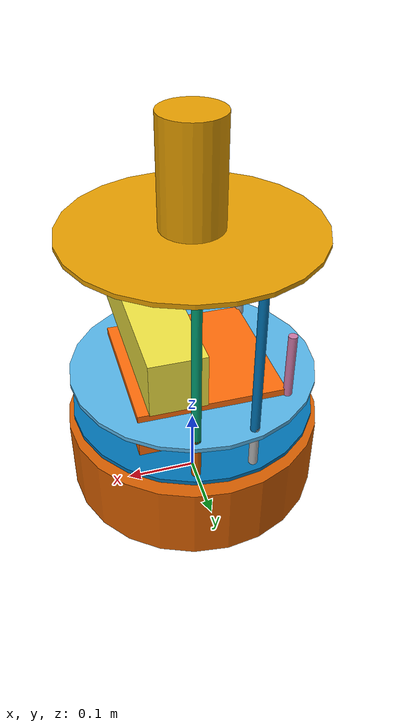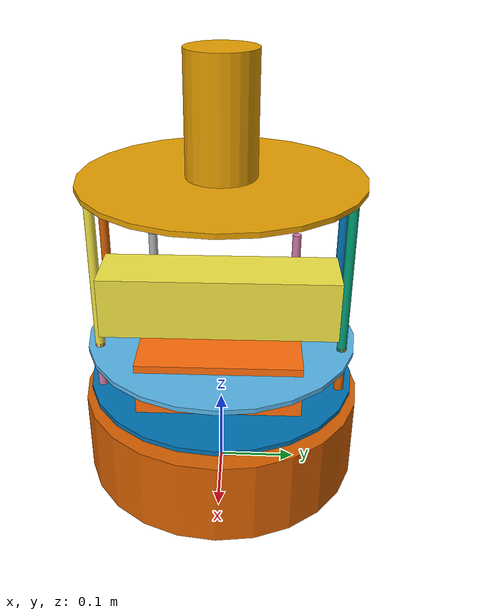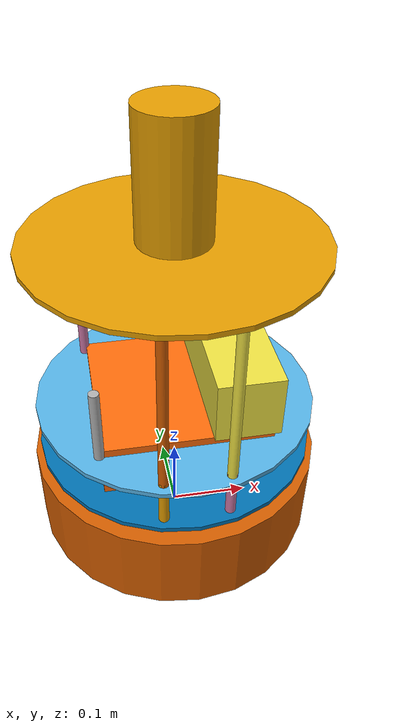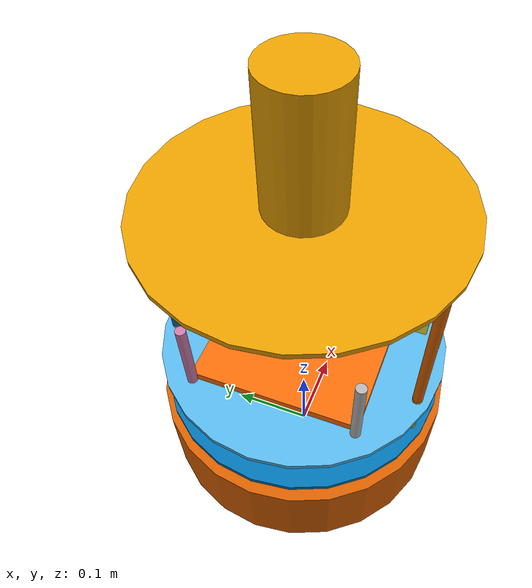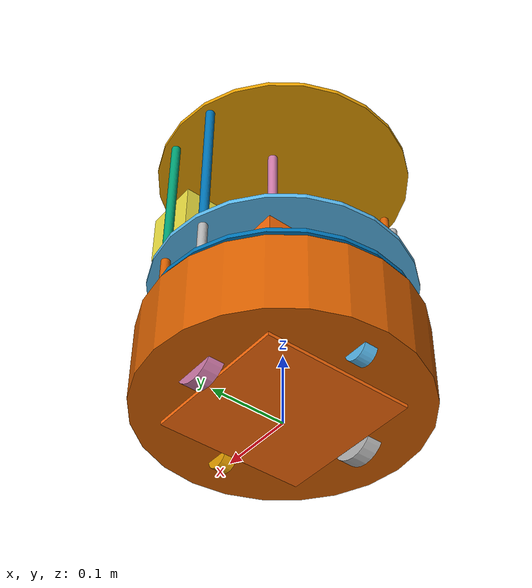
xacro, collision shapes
<?xml version="1.0"?>
<!--
    - Base      : kobuki
    - Stacks    : hexagons
    - 3d gps_sensor : kinect
-->
<robot name="turtlebot"
    xmlns:xacro="http://ros.org/wiki/xacro">
    <gazebo>

        <plugin name="p3d_base_controller" filename="libgazebo_ros_p3d.so">
            <alwaysOn>true</alwaysOn>
            <updateRate>50.0</updateRate>
            <bodyName>base_link</bodyName>
            <topicName>ground_truth/state</topicName>
            <gaussianNoise>0.01</gaussianNoise>
            <frameName>world</frameName>
            <xyzOffsets>0 0 0</xyzOffsets>
            <rpyOffsets>0 0 0</rpyOffsets>
        </plugin>
    </gazebo>

    <xacro:arg name="gpu" default="false"/>
    <xacro:property name="gpu" value="$(arg gpu)" />

    <xacro:include filename="$(find tb_gazebo_description)/urdf/turtlebot_common_library.urdf.xacro" />
    <xacro:include filename="$(find tb_gazebo_description)/urdf/kobuki.urdf.xacro" />
    <xacro:include filename="$(find tb_gazebo_description)/urdf/stacks/hexagons.urdf.xacro"/>
    <xacro:include filename="$(find tb_gazebo_description)/urdf/sensors/kinect.urdf.xacro"/>

    <xacro:include filename="$(find velodyne_description)/urdf/HDL-32E.urdf.xacro"/>
    <xacro:HDL-32E parent="base_link" name="velodyne" topic="/velodyne_points" hz="10" samples="440" gpu="${gpu}">
        <origin xyz="0 0 0.4" rpy="0 0 0" />
    </xacro:HDL-32E>

    <!-- ================== GPS Sensor ================= -->
    <xacro:property name="gps_height" value="0.2" />
    <xacro:property name="gps_width" value="0.2" />
    <joint name="fixed" type="fixed">
        <parent link="base_link"/>
        <child link="gps_sensor"/>
    </joint>

    <link name="gps_sensor">
        <collision>
            <origin xyz="0 0 ${gps_height/2}" rpy="0 0 0"/>
            <geometry>
                <box size="${gps_width} ${gps_width} ${gps_height}"/>
            </geometry>
        </collision>

        <visual>
            <origin xyz="0 0 ${gps_height/2}" rpy="0 0 0"/>
            <geometry>
                <box size="${gps_width} ${gps_width} ${gps_height}"/>
            </geometry>
            <material name="orange"/>
        </visual>

        <inertial>
            <origin xyz="0 0 1" rpy="0 0 0"/>
            <mass value="1"/>
            <inertia ixx="1.0" ixy="0.0" ixz="0.0" iyy="1.0" iyz="0.0" izz="1.0"/>
        </inertial>
    </link>

    <material name="orange">
        <color rgba="${255/255} ${108/255} ${10/255} 1.0"/>
    </material>
    <gazebo reference="gps_sensor">
        <material>Gazebo/Orange</material>
    </gazebo>

    <gazebo>
        <plugin name="gazebo_ros_gps" filename="libhector_gazebo_ros_gps.so">
            <updateRate>4.0</updateRate>
            <bodyName>gps_sensor</bodyName>
            <frameId>gps_sensor</frameId>
            <topicName>gps/fix</topicName>
            <velocityTopicName>/gps/fix_velocity</velocityTopicName>
            <referenceLatitude>55.160006</referenceLatitude>
            <referenceLongitude>61.362394</referenceLongitude>
            <referenceHeading>90</referenceHeading>
            <referenceAltitude>10</referenceAltitude>
            <offset>0 0 0</offset>
            <drift>0.00 0.00 0.00</drift>
            <gaussianNoise>0.0 0.0 0.0</gaussianNoise>
            <velocityDrift>0.00 0.00 0.00</velocityDrift>
            <velocityGaussianNoise>0.0 0.0 0.0</velocityGaussianNoise>
        </plugin>
    </gazebo>

    <!-- ================== IMU Sensor ================= -->
    <joint name="fixed_imu" type="fixed">
        <parent link="base_link"/>
        <child link="imu_sensor"/>
    </joint>

    <link name="imu_sensor">
        <collision>
            <origin xyz="0 0 ${gps_height/2}" rpy="0 0 0"/>
            <geometry>
                <box size="${gps_width} ${gps_width} ${gps_height}"/>
            </geometry>
        </collision>

        <visual>
            <origin xyz="0 0 ${gps_height/2}" rpy="0 0 0"/>
            <geometry>
                <box size="${gps_width} ${gps_width} ${gps_height}"/>
            </geometry>
            <material name="orange"/>
        </visual>

        <inertial>
            <origin xyz="0 0 1" rpy="0 0 0"/>
            <mass value="1"/>
            <inertia ixx="1.0" ixy="0.0" ixz="0.0" iyy="1.0" iyz="0.0" izz="1.0"/>
        </inertial>
    </link>

    <gazebo reference="imu_sensor">
        <material>Gazebo/Orange</material>
        <gravity>true</gravity>
        <sensor name="imu_sensor" type="imu">
          <always_on>true</always_on>
          <update_rate>100</update_rate>
          <visualize>true</visualize>
          <topic>__default_topic__</topic>
          <plugin filename="libgazebo_ros_imu_sensor.so" name="imu_plugin">
            <topicName>imu</topicName>
            <bodyName>imu_sensor</bodyName>
            <updateRateHZ>10.0</updateRateHZ>
            <gaussianNoise>0.0</gaussianNoise>
            <xyzOffset>0 0 0</xyzOffset>
            <rpyOffset>0 0 0</rpyOffset>
            <frameName>imu_sensor</frameName>
            <initialOrientationAsReference>false</initialOrientationAsReference>
          </plugin>
          <pose>0 0 0 0 0 0</pose>
        </sensor>
      </gazebo>

    <xacro:kobuki/>
    <xacro:stack_hexagons parent="base_link"/>
    <xacro:sensor_kinect parent="base_link"/>
</robot>

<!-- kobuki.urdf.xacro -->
<robot name="kobuki" xmlns:xacro="http://ros.org/wiki/xacro">
  <xacro:include filename="$(find tb_gazebo_description)/urdf/common_properties.urdf.xacro"/>
  <xacro:include filename="$(find tb_gazebo_description)/urdf/kobuki_gazebo.urdf.xacro"/>

  <!-- Kobuki -->
  <xacro:macro name="kobuki">
    <link name="base_footprint"/>
    <joint name="base_joint" type="fixed">
      <origin xyz="0 0 0.0102" rpy="0 0 0" />
      <parent link="base_footprint"/>
      <child link="base_link" />
    </joint>
    <link name="base_link">
      <visual>
        <geometry>
          <!-- new mesh -->
          <mesh filename="package://tb_gazebo_description/meshes/main_body.dae" />
        </geometry>
        <origin xyz="0.001 0 0.05199" rpy="0 0 0"/>
      </visual>
      <collision name="base">
        <geometry>
          <cylinder length="0.10938" radius="0.178"/>
        </geometry>
        <origin xyz="0.0 0 0.05949" rpy="0 0 0"/>
      </collision>
      <inertial>
        <!-- COM experimentally determined -->
        <origin xyz="0.01 0 0"/>
        <mass value="2.4"/> <!-- 2.4/2.6 kg for small/big battery pack -->
        <inertia ixx="0.019995" ixy="0.0" ixz="0.0"
                 iyy="0.019995" iyz="0.0"
                 izz="0.03675" />
      </inertial>
    </link>

    <joint name="wheel_left_joint" type="continuous">
      <parent link="base_link"/>
      <child link="wheel_left_link"/>
      <origin xyz="0.00 ${0.23/2} 0.0250" rpy="${-M_PI/2} 0 0"/>
      <axis xyz="0 0 1"/>
    </joint>
    <link name="wheel_left_link">
      <visual>
        <geometry>
          <mesh filename="package://tb_gazebo_description/meshes/wheel.dae"/>
        </geometry>
        <origin xyz="0 0 0" rpy="0 0 0"/>
      </visual>
      <collision>
        <geometry>
          <cylinder length="0.0206" radius="0.035"/>
        </geometry>
        <origin rpy="0 0 0" xyz="0 0 0"/>
      </collision>
      <inertial>
        <mass value="0.01" />
        <origin xyz="0 0 0" />
        <inertia ixx="0.001" ixy="0.0" ixz="0.0"
                 iyy="0.001" iyz="0.0"
                 izz="0.001" />
      </inertial>
    </link>

    <joint name="wheel_right_joint" type="continuous">
      <parent link="base_link"/>
      <child link="wheel_right_link"/>
      <origin xyz="0.00 -${0.23/2} 0.0250" rpy="${-M_PI/2} 0 0"/>
      <axis xyz="0 0 1"/>
    </joint>
    <link name="wheel_right_link">
      <visual>
        <geometry>
          <mesh filename="package://tb_gazebo_description/meshes/wheel.dae"/>
        </geometry>
        <origin xyz="0 0 0" rpy="0 0 0"/>
      </visual>
      <collision>
        <geometry>
          <cylinder length="0.0206" radius="0.035"/>
        </geometry>
        <origin rpy="0 0 0" xyz="0 0 0"/>
      </collision>
      <inertial>
        <mass value="0.01" />
        <origin xyz="0 0 0" />
        <inertia ixx="0.001" ixy="0.0" ixz="0.0"
                 iyy="0.001" iyz="0.0"
                 izz="0.001" />
      </inertial>
    </link>

    <joint name="caster_front_joint" type="fixed">
      <parent link="base_link"/>
      <child link="caster_front_link"/>
      <origin xyz="0.115 0.0 0.007" rpy="${-M_PI/2} 0 0"/>
    </joint>
    <link name="caster_front_link">
      <collision>
        <geometry>
          <cylinder length="0.0176" radius="0.017"/>
        </geometry>
        <origin rpy="0 0 0" xyz="0 0 0"/>
      </collision>
      <inertial>
        <mass value="0.01" />
        <origin xyz="0 0 0" />
        <inertia ixx="0.001" ixy="0.0" ixz="0.0"
                 iyy="0.001" iyz="0.0"
                 izz="0.001" />
      </inertial>
    </link>

    <joint name="caster_back_joint" type="fixed">
      <parent link="base_link"/>
      <child link="caster_back_link"/>
      <origin xyz="-0.135 0.0 0.009" rpy="${-M_PI/2} 0 0"/>
    </joint>
    <link name="caster_back_link">
      <collision>
        <geometry>
          <cylinder length="0.0176" radius="0.017"/>
        </geometry>
        <origin rpy="0 0 0" xyz="0 0 0"/>
      </collision>
      <inertial>
        <mass value="0.01" />
        <origin xyz="0 0 0" />
        <inertia ixx="0.001" ixy="0.0" ixz="0.0"
                 iyy="0.001" iyz="0.0"
                 izz="0.001" />
      </inertial>
    </link>

    <!-- Kobuki's sensors -->
    <joint name="gyro_joint" type="fixed">
      <axis xyz="0 1 0"/>
      <origin xyz="0.056 0.062 0.0202" rpy="0 0 0"/>
      <parent link="base_link"/>
      <child link="gyro_link"/>
    </joint>
    <link name="gyro_link">
      <inertial>
        <mass value="0.001"/>
        <origin xyz="0 0 0" rpy="0 0 0"/>
        <inertia ixx="0.0001" ixy="0" ixz="0"
                 iyy="0.000001" iyz="0"
                 izz="0.0001"/>
      </inertial>
    </link>

    <joint name="cliff_sensor_left_joint" type="fixed">
      <origin xyz="0.08734 0.13601 0.0214" rpy="0 ${M_PI/2} 0" />
      <parent link="base_link"/>
      <child link="cliff_sensor_left_link" />
    </joint>
    <link name="cliff_sensor_left_link">
      <inertial>
        <mass value="0.0001" />
        <origin xyz="0 0 0" />
        <inertia ixx="0.0001" ixy="0.0" ixz="0.0"
                 iyy="0.0001" iyz="0.0"
                 izz="0.0001" />
      </inertial>
    </link>

    <joint name="cliff_sensor_right_joint" type="fixed">
      <origin xyz="0.085 -0.13601 0.0214" rpy="0 ${M_PI/2} 0" />
      <parent link="base_link"/>
      <child link="cliff_sensor_right_link" />
    </joint>
    <link name="cliff_sensor_right_link">
      <inertial>
        <mass value="0.0001" />
        <origin xyz="0 0 0" />
        <inertia ixx="0.0001" ixy="0.0" ixz="0.0"
                 iyy="0.0001" iyz="0.0"
                 izz="0.0001" />
      </inertial>
    </link>

    <joint name="cliff_sensor_front_joint" type="fixed">
      <origin xyz="0.156 0.00 0.0214" rpy="0 ${M_PI/2} 0" />
      <parent link="base_link"/>
      <child link="cliff_sensor_front_link" />
    </joint>
    <link name="cliff_sensor_front_link">
      <inertial>
        <mass value="0.0001" />
        <origin xyz="0 0 0" />
        <inertia ixx="0.0001" ixy="0.0" ixz="0.0"
                 iyy="0.0001" iyz="0.0"
                 izz="0.0001" />
      </inertial>
    </link>

    <!-- Kobuki Gazebo simulation details -->
    <xacro:kobuki_sim/>

  </xacro:macro>
</robot>

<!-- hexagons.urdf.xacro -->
<!--
  Hexagon stacks
 -->
<robot name="stack_hexagons" xmlns:xacro="http://ros.org/wiki/xacro">
  <xacro:include filename="$(find tb_gazebo_description)/urdf/common_properties.urdf.xacro"/>

  <!-- Xacro properties -->
  <xacro:property name="M_SCALE" value="0.001"/>

  <!-- Xacro macros -->
  <!-- Pole macros -->
  <xacro:macro name="stack_bottom_pole" params="parent number x_loc y_loc z_loc">
    <joint name="pole_bottom_${number}_joint" type="fixed">
      <origin xyz="${x_loc} ${y_loc} ${z_loc}" rpy="0 0 0"/>
      <parent link="${parent}"/>
      <child link="pole_bottom_${number}_link"/>
    </joint>
    <link name="pole_bottom_${number}_link">
      <visual>
        <origin xyz="0 0 0" rpy="0 0 0"/>
        <geometry>
          <mesh filename="package://tb_gazebo_description/meshes/stacks/hexagons/pole_bottom.dae"/>
        </geometry>
      </visual>
      <collision>
        <origin xyz="0 0 0" rpy="0 0 0"/>
        <geometry>
          <cylinder length="0.0492" radius="0.006"/>
        </geometry>
      </collision>
      <inertial>
        <mass value="0.008"/>
        <origin xyz="0 0 0" rpy="0 0 0"/>
        <inertia ixx="0.000001686" ixy="0.0" ixz="0.0"
                 iyy="0.000001686" iyz="0.0"
                 izz="0.000000144"/>
      </inertial>
    </link>
  </xacro:macro>

  <xacro:macro name="stack_middle_pole" params="parent number x_loc y_loc z_loc">
    <joint name="pole_middle_${number}_joint" type="fixed">
      <origin xyz="${x_loc} ${y_loc} ${z_loc}" rpy="0 0 0" />
      <parent link="${parent}"/>
      <child link="pole_middle_${number}_link"/>
    </joint>
    <link name="pole_middle_${number}_link">
      <visual>
        <origin xyz="0 0 0" rpy="0 ${M_PI} 0"/>
        <geometry>
          <mesh filename="package://tb_gazebo_description/meshes/stacks/hexagons/pole_middle.dae"/>
        </geometry>
      </visual>
      <collision>
        <origin xyz="0 0 0" rpy="0 0 0"/>
        <geometry>
          <cylinder length="0.0608" radius="0.006"/>
        </geometry>
      </collision>
      <inertial>
        <mass value="0.012"/>
        <origin xyz="0 0 0"/>
        <inertia ixx="0.000003805" ixy="0.0" ixz="0.0"
                 iyy="0.000003805" iyz="0.0"
                 izz="0.000000216"/>
      </inertial>
    </link>
  </xacro:macro>

  <xacro:macro name="stack_top_pole" params="parent number x_loc y_loc z_loc">
    <joint name="pole_top_${number}_joint" type="fixed">
      <origin xyz="${x_loc} ${y_loc} ${z_loc}" rpy="0 0 0"/>
      <parent link="${parent}"/>
      <child link="pole_top_${number}_link"/>
    </joint>
    <link name="pole_top_${number}_link">
      <visual>
        <origin xyz=" 0 0 0" rpy="0 0 0"/>
        <geometry>
          <mesh filename="package://tb_gazebo_description/meshes/stacks/hexagons/pole_top.dae"/>
        </geometry>
      </visual>
      <collision>
        <origin xyz="0 0 0" rpy="0 0 0"/>
        <geometry>
          <cylinder length="0.2032" radius="0.006"/>
        </geometry>
      </collision>
      <inertial>
        <mass value="0.060"/>
        <origin xyz="0 0 0"/>
        <inertia ixx="0.000206991" ixy="0.0" ixz="0.0"
                 iyy="0.000206991" iyz="0.0"
                 izz="0.000001080"/>
      </inertial>
    </link>
  </xacro:macro>

  <xacro:macro name="stack_3d_sensor_pole" params="parent number x_loc y_loc z_loc">
    <joint name="pole_kinect_${number}_joint" type="fixed">
      <origin xyz="${x_loc} ${y_loc} ${z_loc}" rpy="0 0 0"/>
      <parent link="${parent}"/>
      <child link="pole_kinect_${number}_link"/>
    </joint>
    <link name="pole_kinect_${number}_link">
      <visual>
        <origin xyz="0 0 0" rpy="0 0 0"/>
        <geometry>
          <mesh filename="package://tb_gazebo_description/meshes/stacks/hexagons/pole_kinect.dae" />
        </geometry>
      </visual>
      <collision>
        <origin xyz="0 0 0" rpy="0 0 0"/>
        <geometry>
          <cylinder length="0.0936" radius="0.006"/>
        </geometry>
      </collision>
      <inertial>
        <mass value="0.020"/>
        <origin xyz="0 0 0"/>
        <inertia ixx="0.000014782" ixy="0.0" ixz="0.0"
                 iyy="0.000014782" iyz="0.0"
                 izz="0.000000360"/>
      </inertial>
    </link>
  </xacro:macro>

  <xacro:macro name="stack_hexagons" params="parent">
    <xacro:stack_bottom_pole parent="${parent}" number="0" x_loc= "0.120" y_loc= "0.082" z_loc="0.1028"/>
    <xacro:stack_bottom_pole parent="${parent}" number="1" x_loc= "0.055" y_loc= "0.120" z_loc="0.1028"/>
    <xacro:stack_bottom_pole parent="${parent}" number="2" x_loc="-0.055" y_loc= "0.120" z_loc="0.1028"/>
    <xacro:stack_bottom_pole parent="${parent}" number="3" x_loc= "0.120" y_loc="-0.082" z_loc="0.1028"/>
    <xacro:stack_bottom_pole parent="${parent}" number="4" x_loc= "0.055" y_loc="-0.120" z_loc="0.1028"/>
    <xacro:stack_bottom_pole parent="${parent}" number="5" x_loc="-0.055" y_loc="-0.120" z_loc="0.1028"/>

    <joint name="plate_bottom_joint" type="fixed">
      <origin xyz="0.02364 0.0 0.1306" rpy="0 0 0"/>
      <parent link="${parent}"/>
      <child link="plate_bottom_link"/>
    </joint>
    <link name="plate_bottom_link">
      <visual>
        <origin xyz="0 0 0" rpy="0 0 0"/>
        <geometry>
          <mesh filename="package://tb_gazebo_description/meshes/stacks/hexagons/plate_bottom.dae"/>
        </geometry>
      </visual>
      <collision>
        <origin xyz="-0.02364 0 0" rpy="0 0 0"/>
        <geometry>
          <cylinder length="0.006" radius="0.170"/>
        </geometry>
      </collision>
      <inertial>
        <mass value="0.520" />
        <origin xyz="0 0 0" />
        <inertia ixx="0.003328" ixy="0.0" ixz="0.0"
                 iyy="0.003328" iyz="0.0"
                 izz="0.006656" />
      </inertial>
    </link>

    <xacro:stack_middle_pole parent="${parent}" number="0" x_loc= "0.0381" y_loc= "0.1505" z_loc="0.1640"/>
    <xacro:stack_middle_pole parent="${parent}" number="1" x_loc= "0.0381" y_loc="-0.1505" z_loc="0.1640"/>
    <xacro:stack_middle_pole parent="${parent}" number="2" x_loc="-0.0381" y_loc= "0.1505" z_loc="0.1640"/>
    <xacro:stack_middle_pole parent="${parent}" number="3" x_loc="-0.0381" y_loc="-0.1505" z_loc="0.1640"/>

    <joint name="plate_middle_joint" type="fixed">
      <origin xyz="-0.01364 0.0 0.1874" rpy="0 0 0"/>
      <parent link="${parent}"/>
      <child link="plate_middle_link"/>
    </joint>
    <link name="plate_middle_link">
      <visual>
        <origin xyz="0 0 0" rpy="0 0 0"/>
        <geometry>
          <mesh filename="package://tb_gazebo_description/meshes/stacks/hexagons/plate_middle.dae"/>
        </geometry>
      </visual>
      <collision>
        <origin xyz="0.01364 0.0 0.0" rpy="0 0 0"/>
        <geometry>
          <cylinder length="0.006" radius="0.170"/>
        </geometry>
      </collision>
      <inertial>
        <mass value="0.520" />
        <origin xyz="0 0 0" />
        <inertia ixx="0.003328" ixy="0.0" ixz="0.0"
                 iyy="0.003328" iyz="0.0"
                 izz="0.006656" />
      </inertial>
    </link>

    <xacro:stack_top_pole parent="${parent}" number="0" x_loc= "0.0381" y_loc= "0.1505" z_loc="0.2920"/>
    <xacro:stack_top_pole parent="${parent}" number="1" x_loc= "0.0381" y_loc="-0.1505" z_loc="0.2920"/>
    <xacro:stack_top_pole parent="${parent}" number="2" x_loc="-0.0381" y_loc= "0.1505" z_loc="0.2920"/>
    <xacro:stack_top_pole parent="${parent}" number="3" x_loc="-0.0381" y_loc="-0.1505" z_loc="0.2920"/>
    <xacro:stack_3d_sensor_pole parent="${parent}" number="0" x_loc="-0.1024" y_loc= "0.098" z_loc="0.2372"/>
    <xacro:stack_3d_sensor_pole parent="${parent}" number="1" x_loc="-0.1024" y_loc="-0.098" z_loc="0.2372"/>

    <joint name="plate_top_joint" type="fixed">
      <origin xyz="-0.01364 0.0  0.3966" rpy="0 0 0"/>
      <parent link="${parent}"/>
      <child link="plate_top_link"/>
    </joint>
    <link name="plate_top_link">
      <visual>
        <origin xyz="0 0 0" rpy="0 0 0"/>
        <geometry>
          <mesh filename="package://tb_gazebo_description/meshes/stacks/hexagons/plate_top.dae"/>
        </geometry>
      </visual>
      <collision>
        <origin xyz="0.01364 0 0" rpy="0 0 0"/>
        <geometry>
          <cylinder length="0.006" radius="0.170"/>
        </geometry>
      </collision>
      <inertial>
        <mass value="0.520"/>
        <origin xyz="0 0 0"/>
        <inertia ixx="0.003328" ixy="0.0" ixz="0.0"
                 iyy="0.003328" iyz="0.0"
                 izz="0.006656" />
      </inertial>
    </link>
  </xacro:macro>
</robot>

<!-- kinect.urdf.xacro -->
<robot name="sensor_kinect" xmlns:xacro="http://ros.org/wiki/xacro">
  <xacro:include filename="$(find tb_gazebo_description)/urdf/turtlebot_gazebo.urdf.xacro"/>
  <xacro:include filename="$(find tb_gazebo_description)/urdf/turtlebot_properties.urdf.xacro"/>

  <xacro:property name="kinect_cam_py" value="-0.0125"/>
  <!-- Parameterised in part by the values in turtlebot_properties.urdf.xacro -->
  <xacro:macro name="sensor_kinect" params="parent">
    <joint name="camera_rgb_joint" type="fixed">
      <origin xyz="${cam_px} ${kinect_cam_py} ${cam_pz}" rpy="${cam_or} ${cam_op} ${cam_oy}"/>
      <parent link="${parent}"/>
      <child link="camera_rgb_frame" />
    </joint>
    <link name="camera_rgb_frame"/>

    <joint name="camera_rgb_optical_joint" type="fixed">
      <origin xyz="0 0 0" rpy="${-M_PI/2} 0 ${-M_PI/2}" />
      <parent link="camera_rgb_frame" />
      <child link="camera_rgb_optical_frame" />
    </joint>
    <link name="camera_rgb_optical_frame"/>

    <joint name="camera_joint" type="fixed">
      <origin xyz="-0.031 ${-kinect_cam_py} -0.016" rpy="0 0 0"/>
      <parent link="camera_rgb_frame"/>
      <child link="camera_link"/>
    </joint>
      <link name="camera_link">
      <visual>
       <origin xyz="0 0 0" rpy="0 0 ${M_PI/2}"/>
        <geometry>
         <mesh filename="package://tb_gazebo_description/meshes/sensors/kinect.dae"/>
        </geometry>
      </visual>
  	  <collision>
        <origin xyz="0.0 0.0 0.0" rpy="0 0 0"/>
  	    <geometry>
  	      <box size="0.07271 0.27794 0.073"/>
  	    </geometry>
  	  </collision>
      <inertial>
        <mass value="0.564" />
        <origin xyz="0 0 0" />
        <inertia ixx="0.003881243" ixy="0.0" ixz="0.0"
                 iyy="0.000498940" iyz="0.0"
                 izz="0.003879257" />
      </inertial>
    </link>

	<joint name="camera_depth_joint" type="fixed">
	  <origin xyz="0 ${2 * -kinect_cam_py} 0" rpy="0 0 0" />
	  <parent link="camera_rgb_frame" />
	  <child link="camera_depth_frame" />
	</joint>
	<link name="camera_depth_frame"/>

	<joint name="camera_depth_optical_joint" type="fixed">
	  <origin xyz="0 0 0" rpy="${-M_PI/2} 0 ${-M_PI/2}" />
	  <parent link="camera_depth_frame" />
	  <child link="camera_depth_optical_frame" />
	</joint>
	<link name="camera_depth_optical_frame"/>

	<!-- Kinect sensor for simulation -->
	<xacro:turtlebot_sim_3dsensor/>
  </xacro:macro>
</robot>

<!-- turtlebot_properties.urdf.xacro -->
<robot xmlns:xacro="http://ros.org/wiki/xacro">
  <!--
    These properties must be observed by any machine
    that wants to be defined as a turtlebot. Refer
    to the REP for more details.

    http://www.ros.org/reps/rep-0119.html
   -->

	<xacro:property name="cam_px" value="0.087" />
	<xacro:property name="cam_pz" value="0.2870" />
	<xacro:property name="cam_or" value="0" />
	<xacro:property name="cam_op" value="0" />
	<xacro:property name="cam_oy" value="0" />
</robot>

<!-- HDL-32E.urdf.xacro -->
<robot xmlns:xacro="http://www.ros.org/wiki/xacro" name="HDL-32E">
  <xacro:property name="M_PI" value="3.1415926535897931" />
  <xacro:macro name="HDL-32E" params="*origin parent:=base_link name:=velodyne tf_prefix:='' topic:=/velodyne_points organize_cloud:=false hz:=10 lasers:=32 samples:=2187 collision_range:=0.3 min_range:=0.9 max_range:=130.0 noise:=0.008 min_angle:=-${M_PI} max_angle:=${M_PI} gpu:=false">

    <joint name="${name}_base_mount_joint" type="fixed">
      <xacro:insert_block name="origin" />
      <parent link="${parent}"/>
      <child link="${name}_base_link"/>
    </joint>

    <link name="${name}_base_link">
      <inertial>
        <mass value="1.0"/>
        <origin xyz="0 0 0.07212"/>
        <inertia ixx="${(1.0 * (3.0*0.04267*0.04267 + 0.14424*0.14424)) / 12.0}" ixy="0" ixz="0"
          iyy="${(1.0 * (3.0*0.04267*0.04267 + 0.14424*0.14424)) / 12.0}" iyz="0"
          izz="${0.5 * 1.0 * (0.04267*0.04267)}"/>
      </inertial>
      <visual>
        <geometry>
          <mesh filename="package://velodyne_description/meshes/HDL32E_base.dae" />
        </geometry>
      </visual>
      <collision>
        <origin rpy="0 0 0" xyz="0 0 0.07212"/>
        <geometry>
          <cylinder radius="0.04267" length="0.14424"/>
        </geometry>
      </collision>
    </link>

    <joint name="${name}_base_scan_joint" type="fixed" >
      <origin xyz="0 0 0.09081" rpy="0 0 0" />
      <parent link="${name}_base_link" />
      <child link="${name}"/>
    </joint>

    <link name="${name}">
      <inertial>
        <mass value="0.01"/>
        <origin xyz="0 0 0"/>
        <inertia ixx="1e-7" ixy="0" ixz="0" iyy="1e-7" iyz="0" izz="1e-7"/>
      </inertial>
      <visual>
        <origin xyz="0 0 -0.09081" rpy="0 0 0" />
        <geometry>
          <mesh filename="package://velodyne_description/meshes/HDL32E_scan.dae" />
        </geometry>
      </visual>
      <collision>
        <geometry>
          <sphere radius="0"/>
        </geometry>
      </collision>
    </link>

    <!-- Gazebo requires the velodyne_gazebo_plugins package -->
    <gazebo reference="${name}">
      <xacro:if value="${gpu}">
        <sensor type="gpu_ray" name="${name}-HDL32E">
          <pose>0 0 0 0 0 0</pose>
          <visualize>false</visualize>
          <update_rate>${hz}</update_rate>
          <ray>
            <scan>
              <horizontal>
                <samples>${samples}</samples>
                <resolution>1</resolution>
                <min_angle>${min_angle}</min_angle>
                <max_angle>${max_angle}</max_angle>
              </horizontal>
              <vertical>
                <samples>${lasers}</samples>
                <resolution>1</resolution>
                <min_angle>-${5.0*M_PI/180.0}</min_angle>
                <max_angle> ${85.0*M_PI/180.0}</max_angle>
              </vertical>
            </scan>
            <range>
              <min>${collision_range}</min>
              <max>${max_range+1}</max>
              <resolution>0.001</resolution>
            </range>
            <noise>
              <type>gaussian</type>
              <mean>0.0</mean>
              <stddev>0.0</stddev>
            </noise>
          </ray>
          <plugin name="gazebo_ros_laser_controller" filename="libgazebo_ros_velodyne_laser.so">
            <ros>
              <namespace>/${name}</namespace>
              <remapping>~/out:=${topic}</remapping>
            </ros>
            <tf_prefix>${tf_prefix}</tf_prefix>
            <frame_name>${name}</frame_name>
            <organize_cloud>${organize_cloud}</organize_cloud>
            <min_range>${min_range}</min_range>
            <max_range>${max_range}</max_range>
            <gaussian_noise>${noise}</gaussian_noise>
          </plugin>
        </sensor>
      </xacro:if>
      <xacro:unless value="${gpu}">
        <sensor type="ray" name="${name}-HDL32E">
          <pose>0 0 0 0 0 0</pose>
          <visualize>false</visualize>
          <update_rate>${hz}</update_rate>
          <ray>
            <scan>
              <horizontal>
                <samples>${samples}</samples>
                <resolution>1</resolution>
                <min_angle>${min_angle}</min_angle>
                <max_angle>${max_angle}</max_angle>
              </horizontal>
              <vertical>
                <samples>${lasers}</samples>
                <resolution>1</resolution>
                <min_angle>-${5.0*M_PI/180.0}</min_angle>
                <max_angle> ${85.0*M_PI/180.0}</max_angle>
              </vertical>
            </scan>
            <range>
              <min>${collision_range}</min>
              <max>${max_range+1}</max>
              <resolution>0.001</resolution>
            </range>
            <noise>
              <type>gaussian</type>
              <mean>0.0</mean>
              <stddev>0.0</stddev>
            </noise>
          </ray>
          <plugin name="gazebo_ros_laser_controller" filename="libgazebo_ros_velodyne_laser.so">
            <ros>
              <namespace>/${name}</namespace>
              <remapping>~/out:=${topic}</remapping>
            </ros>
            <tf_prefix>${tf_prefix}</tf_prefix>
            <frame_name>${name}</frame_name>
            <organize_cloud>${organize_cloud}</organize_cloud>
            <min_range>${min_range}</min_range>
            <max_range>${max_range}</max_range>
            <gaussian_noise>${noise}</gaussian_noise>
          </plugin>
        </sensor>
      </xacro:unless>
    </gazebo>

  </xacro:macro>
</robot>
